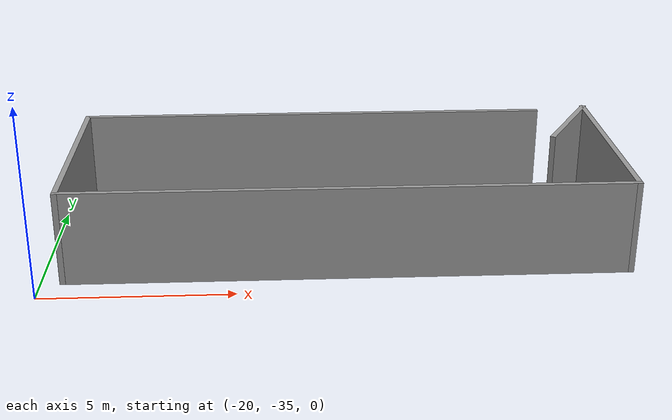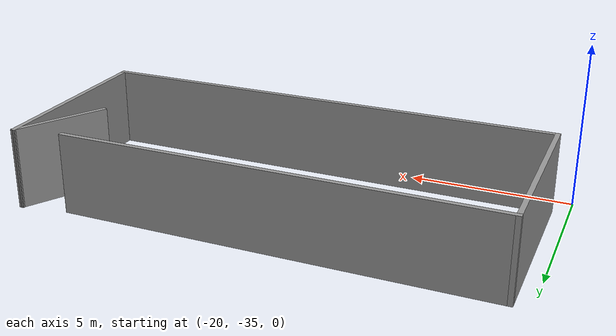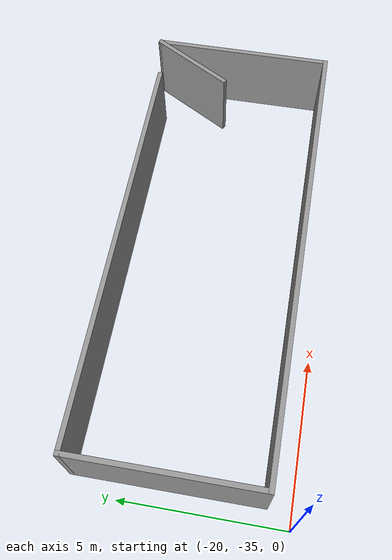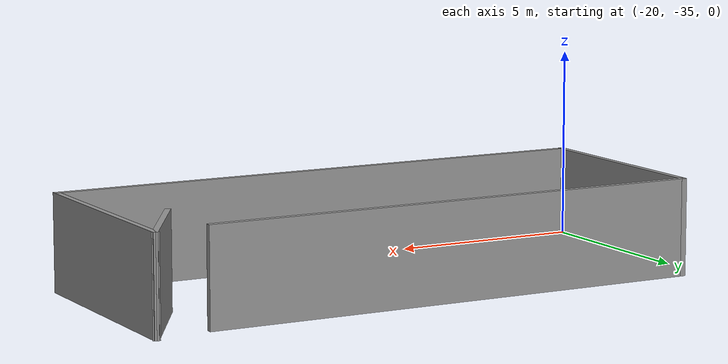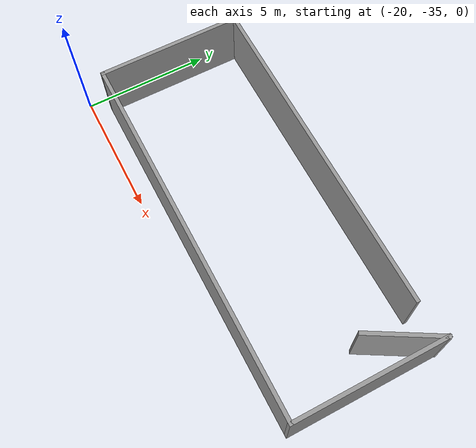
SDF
<?xml version='1.0'?>
<sdf version='1.6'>
  <model name='room5'>
    <pose frame=''>-12.1236 -31.2831 0 0 -0 0</pose>
    <link name='Wall_37'>
      <collision name='Wall_37_Collision'>
        <geometry>
          <box>
            <size>13.25 0.15 2.5</size>
          </box>
        </geometry>
        <pose frame=''>0 0 1.25 0 -0 0</pose>
      </collision>
      <visual name='Wall_37_Visual'>
        <pose frame=''>0 0 1.25 0 -0 0</pose>
        <geometry>
          <box>
            <size>13.25 0.15 2.5</size>
          </box>
        </geometry>
        <material>
          <script>
            <uri>file://media/materials/scripts/gazebo.material</uri>
            <name>Gazebo/Grey</name>
          </script>
          <ambient>1 1 1 1</ambient>
        </material>
        <meta>
          <layer>0</layer>
        </meta>
      </visual>
      <pose frame=''>-0.763726 2.66127 0 0 -0 0</pose>
    </link>
    <link name='Wall_39'>
      <collision name='Wall_39_Collision'>
        <geometry>
          <box>
            <size>5.75 0.15 2.5</size>
          </box>
        </geometry>
        <pose frame=''>0 0 1.25 0 -0 0</pose>
      </collision>
      <visual name='Wall_39_Visual'>
        <pose frame=''>0 0 1.25 0 -0 0</pose>
        <geometry>
          <box>
            <size>5.75 0.15 2.5</size>
          </box>
        </geometry>
        <material>
          <script>
            <uri>file://media/materials/scripts/gazebo.material</uri>
            <name>Gazebo/Grey</name>
          </script>
          <ambient>1 1 1 1</ambient>
        </material>
        <meta>
          <layer>0</layer>
        </meta>
      </visual>
      <pose frame=''>-7.31372 -0.138726 0 0 -0 -1.5708</pose>
    </link>
    <link name='Wall_40'>
      <collision name='Wall_40_Collision'>
        <geometry>
          <box>
            <size>14.75 0.15 2.5</size>
          </box>
        </geometry>
        <pose frame=''>0 0 1.25 0 -0 0</pose>
      </collision>
      <visual name='Wall_40_Visual'>
        <pose frame=''>0 0 1.25 0 -0 0</pose>
        <geometry>
          <box>
            <size>14.75 0.15 2.5</size>
          </box>
        </geometry>
        <material>
          <script>
            <uri>file://media/materials/scripts/gazebo.material</uri>
            <name>Gazebo/Grey</name>
          </script>
          <ambient>1 1 1 1</ambient>
        </material>
        <meta>
          <layer>0</layer>
        </meta>
      </visual>
      <pose frame=''>-0.013726 -2.93872 0 0 -0 0</pose>
    </link>
    <link name='Wall_41'>
      <collision name='Wall_41_Collision'>
        <geometry>
          <box>
            <size>6 0.15 2.5</size>
          </box>
        </geometry>
        <pose frame=''>0 0 1.25 0 -0 0</pose>
      </collision>
      <visual name='Wall_41_Visual'>
        <pose frame=''>0 0 1.25 0 -0 0</pose>
        <geometry>
          <box>
            <size>6 0.15 2.5</size>
          </box>
        </geometry>
        <material>
          <script>
            <uri>file://media/materials/scripts/gazebo.material</uri>
            <name>Gazebo/Grey</name>
          </script>
          <ambient>1 1 1 1</ambient>
        </material>
        <meta>
          <layer>0</layer>
        </meta>
      </visual>
      <pose frame=''>7.28627 -0.013726 0 0 -0 1.5708</pose>
    </link>
    <link name='Wall_42'>
      <collision name='Wall_42_Collision'>
        <geometry>
          <box>
            <size>3 0.15 2.5</size>
          </box>
        </geometry>
        <pose frame=''>0 0 1.25 0 -0 0</pose>
      </collision>
      <visual name='Wall_42_Visual'>
        <pose frame=''>0 0 1.25 0 -0 0</pose>
        <geometry>
          <box>
            <size>3 0.15 2.5</size>
          </box>
        </geometry>
        <material>
          <script>
            <uri>file://media/materials/scripts/gazebo.material</uri>
            <name>Gazebo/Grey</name>
          </script>
          <ambient>0 0 0 1</ambient>
        </material>
        <meta>
          <layer>0</layer>
        </meta>
      </visual>
      <pose frame=''>6.57377 1.67719 0 0 -0 -2.0944</pose>
    </link>
    <static>1</static>
  </model>
</sdf>
